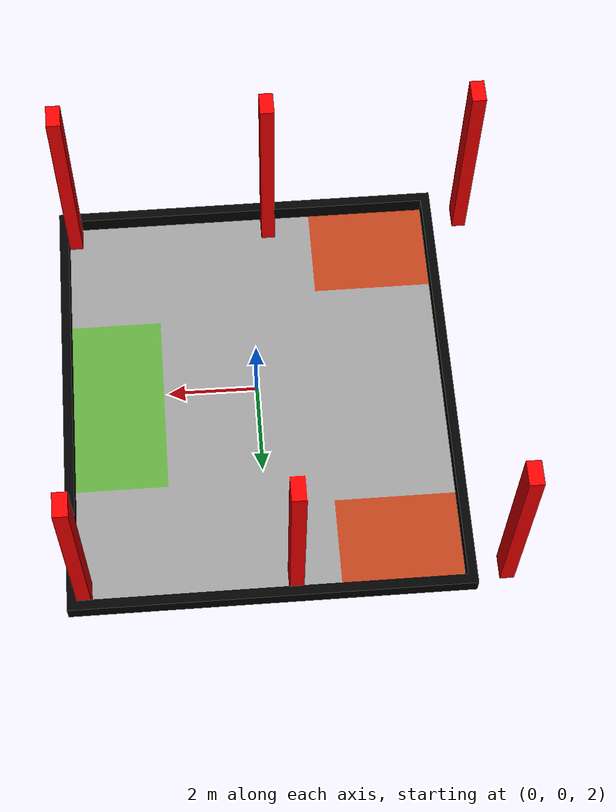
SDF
<!--
  Outdoor scenario from HRATC repository:
  https://github.com/ras-sight/hratc2014_framework
-->
<?xml version="1.0" encoding="UTF-8" ?>
<sdf version="1.4">
  <world name="default">
    <scene>
      <ambient>0.5 0.5 0.5 1</ambient>
      <background>0.5 0.5 0.5 1</background>
      <shadows>false</shadows>
    </scene>
    <physics type="ode">
      <gravity>0 0 -9.81</gravity>
      <ode>
        <solver>
          <type>quick</type>
          <iters>10</iters>
          <sor>1.3</sor>
        </solver>
        <constraints>
          <cfm>0.0</cfm>
          <erp>0.2</erp>
          <contact_max_correcting_vel>10</contact_max_correcting_vel>
          <contact_surface_layer>0.001</contact_surface_layer>
        </constraints>
      </ode>
      <max_step_size>0.001</max_step_size>
    </physics>
    <light type="directional" name="directional_light_1">
      <pose>0 20 20 0.1 0.1 0</pose>
      <diffuse>1 1 1 1</diffuse>
      <specular>1 1 1 1</specular>
      <attenuation>
        <range>300</range>
      </attenuation>
      <direction>0.1 0.1 -1</direction>
      <cast_shadows>false</cast_shadows>
    </light>

    <include>
      <uri>model://test_field</uri>
      <name>landscape</name>
      <pose>0 0 3 0 0 0</pose>
    </include>

  </world>
</sdf>

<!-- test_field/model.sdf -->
<sdf version="1.5">
  <model name="test_field">
      <static>true</static>
      <link name="OliveTree2_link">
	  <collision name="OliveTree2_collision">
	      <geometry>
		  <mesh>
		    <uri>model://test_field/meshes/test_field.dae</uri>
		    <scale>1 1 1</scale>
		  </mesh>
	      </geometry>
	  </collision>
	  <visual name="OliveTree2_visual">
	      <geometry>
		<mesh>
		  <uri>model://test_field/meshes/test_field.dae</uri>
		  <scale>1 1 1</scale>
		</mesh>
	      </geometry>
	      <cast_shadows>false</cast_shadows>
	  </visual>
      </link>
    </model>
</sdf>
